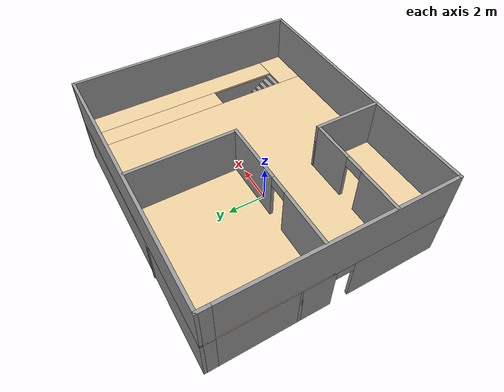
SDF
<?xml version='1.0'?>
<sdf version='1.7'>
  <model name='Map2'>
    <pose>0.282906 0.727471 0 0 -0 0</pose>
    <link name='Floor_0'>
      <pose>0 -0.023588 2.5 0 -0 0</pose>
      <visual name='Floor_0_Visual_0'>
        <pose>-1.1369 0 0.05 0 -0 0</pose>
        <geometry>
          <box>
            <size>11.2262 11.75 0.1</size>
          </box>
        </geometry>
        <material>
          <script>
            <uri>file://media/materials/scripts/gazebo.material</uri>
            <name>Gazebo/Grey</name>
          </script>
          <ambient>0.921569 0.807843 0.615686 1</ambient>
        </material>
        <meta>
          <layer>1</layer>
        </meta>
      </visual>
      <collision name='Floor_0_Collision_0'>
        <geometry>
          <box>
            <size>11.2262 11.75 0.1</size>
          </box>
        </geometry>
        <pose>-1.1369 0 0.05 0 -0 0</pose>
      </collision>
      <visual name='Floor_0_Visual_1'>
        <pose>5.6131 -5.1676 0.05 0 -0 0</pose>
        <geometry>
          <box>
            <size>2.27379 1.4148 0.1</size>
          </box>
        </geometry>
        <material>
          <script>
            <uri>file://media/materials/scripts/gazebo.material</uri>
            <name>Gazebo/Grey</name>
          </script>
          <ambient>0.921569 0.807843 0.615686 1</ambient>
        </material>
        <meta>
          <layer>1</layer>
        </meta>
      </visual>
      <collision name='Floor_0_Collision_1'>
        <geometry>
          <box>
            <size>2.27379 1.4148 0.1</size>
          </box>
        </geometry>
        <pose>5.6131 -5.1676 0.05 0 -0 0</pose>
      </collision>
      <visual name='Floor_0_Visual_2'>
        <pose>6.1131 0.707398 0.05 0 -0 0</pose>
        <geometry>
          <box>
            <size>1.27379 10.3352 0.1</size>
          </box>
        </geometry>
        <material>
          <script>
            <uri>file://media/materials/scripts/gazebo.material</uri>
            <name>Gazebo/Grey</name>
          </script>
          <ambient>0.921569 0.807843 0.615686 1</ambient>
        </material>
        <meta>
          <layer>1</layer>
        </meta>
      </visual>
      <collision name='Floor_0_Collision_2'>
        <geometry>
          <box>
            <size>1.27379 10.3352 0.1</size>
          </box>
        </geometry>
        <pose>6.1131 0.707398 0.05 0 -0 0</pose>
      </collision>
      <visual name='Floor_0_Visual_3'>
        <pose>4.97621 2.4574 0.05 0 -0 0</pose>
        <geometry>
          <box>
            <size>1 6.8352 0.1</size>
          </box>
        </geometry>
        <material>
          <script>
            <uri>file://media/materials/scripts/gazebo.material</uri>
            <name>Gazebo/Grey</name>
          </script>
          <ambient>0.921569 0.807843 0.615686 1</ambient>
        </material>
        <meta>
          <layer>1</layer>
        </meta>
      </visual>
      <collision name='Floor_0_Collision_3'>
        <geometry>
          <box>
            <size>1 6.8352 0.1</size>
          </box>
        </geometry>
        <pose>4.97621 2.4574 0.05 0 -0 0</pose>
      </collision>
    </link>
    <link name='Stairs_0'>
      <visual name='Stairs_0_Visual_0'>
        <pose>4.97621 -1.10046 0.083333 0 -0 0</pose>
        <geometry>
          <box>
            <size>1 0.233333 0.166667</size>
          </box>
        </geometry>
        <material>
          <script>
            <uri>file://media/materials/scripts/gazebo.material</uri>
            <name>Gazebo/Grey</name>
          </script>
          <ambient>1 1 1 1</ambient>
        </material>
        <meta>
          <layer>0</layer>
        </meta>
      </visual>
      <collision name='Stairs_0_Collision_0'>
        <geometry>
          <box>
            <size>1 0.233333 0.166667</size>
          </box>
        </geometry>
        <pose>4.97621 -1.10046 0.083333 0 -0 0</pose>
      </collision>
      <visual name='Stairs_0_Visual_1'>
        <pose>4.97621 -1.33379 0.25 0 -0 0</pose>
        <geometry>
          <box>
            <size>1 0.233333 0.166667</size>
          </box>
        </geometry>
        <material>
          <script>
            <uri>file://media/materials/scripts/gazebo.material</uri>
            <name>Gazebo/Grey</name>
          </script>
          <ambient>1 1 1 1</ambient>
        </material>
        <meta>
          <layer>0</layer>
        </meta>
      </visual>
      <collision name='Stairs_0_Collision_1'>
        <geometry>
          <box>
            <size>1 0.233333 0.166667</size>
          </box>
        </geometry>
        <pose>4.97621 -1.33379 0.25 0 -0 0</pose>
      </collision>
      <visual name='Stairs_0_Visual_2'>
        <pose>4.97621 -1.56713 0.416667 0 -0 0</pose>
        <geometry>
          <box>
            <size>1 0.233333 0.166667</size>
          </box>
        </geometry>
        <material>
          <script>
            <uri>file://media/materials/scripts/gazebo.material</uri>
            <name>Gazebo/Grey</name>
          </script>
          <ambient>1 1 1 1</ambient>
        </material>
        <meta>
          <layer>0</layer>
        </meta>
      </visual>
      <collision name='Stairs_0_Collision_2'>
        <geometry>
          <box>
            <size>1 0.233333 0.166667</size>
          </box>
        </geometry>
        <pose>4.97621 -1.56713 0.416667 0 -0 0</pose>
      </collision>
      <visual name='Stairs_0_Visual_3'>
        <pose>4.97621 -1.80046 0.583333 0 -0 0</pose>
        <geometry>
          <box>
            <size>1 0.233333 0.166667</size>
          </box>
        </geometry>
        <material>
          <script>
            <uri>file://media/materials/scripts/gazebo.material</uri>
            <name>Gazebo/Grey</name>
          </script>
          <ambient>1 1 1 1</ambient>
        </material>
        <meta>
          <layer>0</layer>
        </meta>
      </visual>
      <collision name='Stairs_0_Collision_3'>
        <geometry>
          <box>
            <size>1 0.233333 0.166667</size>
          </box>
        </geometry>
        <pose>4.97621 -1.80046 0.583333 0 -0 0</pose>
      </collision>
      <visual name='Stairs_0_Visual_4'>
        <pose>4.97621 -2.03379 0.75 0 -0 0</pose>
        <geometry>
          <box>
            <size>1 0.233333 0.166667</size>
          </box>
        </geometry>
        <material>
          <script>
            <uri>file://media/materials/scripts/gazebo.material</uri>
            <name>Gazebo/Grey</name>
          </script>
          <ambient>1 1 1 1</ambient>
        </material>
        <meta>
          <layer>0</layer>
        </meta>
      </visual>
      <collision name='Stairs_0_Collision_4'>
        <geometry>
          <box>
            <size>1 0.233333 0.166667</size>
          </box>
        </geometry>
        <pose>4.97621 -2.03379 0.75 0 -0 0</pose>
      </collision>
      <visual name='Stairs_0_Visual_5'>
        <pose>4.97621 -2.26713 0.916667 0 -0 0</pose>
        <geometry>
          <box>
            <size>1 0.233333 0.166667</size>
          </box>
        </geometry>
        <material>
          <script>
            <uri>file://media/materials/scripts/gazebo.material</uri>
            <name>Gazebo/Grey</name>
          </script>
          <ambient>1 1 1 1</ambient>
        </material>
        <meta>
          <layer>0</layer>
        </meta>
      </visual>
      <collision name='Stairs_0_Collision_5'>
        <geometry>
          <box>
            <size>1 0.233333 0.166667</size>
          </box>
        </geometry>
        <pose>4.97621 -2.26713 0.916667 0 -0 0</pose>
      </collision>
      <visual name='Stairs_0_Visual_6'>
        <pose>4.97621 -2.50046 1.08333 0 -0 0</pose>
        <geometry>
          <box>
            <size>1 0.233333 0.166667</size>
          </box>
        </geometry>
        <material>
          <script>
            <uri>file://media/materials/scripts/gazebo.material</uri>
            <name>Gazebo/Grey</name>
          </script>
          <ambient>1 1 1 1</ambient>
        </material>
        <meta>
          <layer>0</layer>
        </meta>
      </visual>
      <collision name='Stairs_0_Collision_6'>
        <geometry>
          <box>
            <size>1 0.233333 0.166667</size>
          </box>
        </geometry>
        <pose>4.97621 -2.50046 1.08333 0 -0 0</pose>
      </collision>
      <visual name='Stairs_0_Visual_7'>
        <pose>4.97621 -2.73379 1.25 0 -0 0</pose>
        <geometry>
          <box>
            <size>1 0.233333 0.166667</size>
          </box>
        </geometry>
        <material>
          <script>
            <uri>file://media/materials/scripts/gazebo.material</uri>
            <name>Gazebo/Grey</name>
          </script>
          <ambient>1 1 1 1</ambient>
        </material>
        <meta>
          <layer>0</layer>
        </meta>
      </visual>
      <collision name='Stairs_0_Collision_7'>
        <geometry>
          <box>
            <size>1 0.233333 0.166667</size>
          </box>
        </geometry>
        <pose>4.97621 -2.73379 1.25 0 -0 0</pose>
      </collision>
      <visual name='Stairs_0_Visual_8'>
        <pose>4.97621 -2.96712 1.41667 0 -0 0</pose>
        <geometry>
          <box>
            <size>1 0.233333 0.166667</size>
          </box>
        </geometry>
        <material>
          <script>
            <uri>file://media/materials/scripts/gazebo.material</uri>
            <name>Gazebo/Grey</name>
          </script>
          <ambient>1 1 1 1</ambient>
        </material>
        <meta>
          <layer>0</layer>
        </meta>
      </visual>
      <collision name='Stairs_0_Collision_8'>
        <geometry>
          <box>
            <size>1 0.233333 0.166667</size>
          </box>
        </geometry>
        <pose>4.97621 -2.96712 1.41667 0 -0 0</pose>
      </collision>
      <visual name='Stairs_0_Visual_9'>
        <pose>4.97621 -3.20046 1.58333 0 -0 0</pose>
        <geometry>
          <box>
            <size>1 0.233333 0.166667</size>
          </box>
        </geometry>
        <material>
          <script>
            <uri>file://media/materials/scripts/gazebo.material</uri>
            <name>Gazebo/Grey</name>
          </script>
          <ambient>1 1 1 1</ambient>
        </material>
        <meta>
          <layer>0</layer>
        </meta>
      </visual>
      <collision name='Stairs_0_Collision_9'>
        <geometry>
          <box>
            <size>1 0.233333 0.166667</size>
          </box>
        </geometry>
        <pose>4.97621 -3.20046 1.58333 0 -0 0</pose>
      </collision>
      <visual name='Stairs_0_Visual_10'>
        <pose>4.97621 -3.43379 1.75 0 -0 0</pose>
        <geometry>
          <box>
            <size>1 0.233333 0.166667</size>
          </box>
        </geometry>
        <material>
          <script>
            <uri>file://media/materials/scripts/gazebo.material</uri>
            <name>Gazebo/Grey</name>
          </script>
          <ambient>1 1 1 1</ambient>
        </material>
        <meta>
          <layer>0</layer>
        </meta>
      </visual>
      <collision name='Stairs_0_Collision_10'>
        <geometry>
          <box>
            <size>1 0.233333 0.166667</size>
          </box>
        </geometry>
        <pose>4.97621 -3.43379 1.75 0 -0 0</pose>
      </collision>
      <visual name='Stairs_0_Visual_11'>
        <pose>4.97621 -3.66712 1.91667 0 -0 0</pose>
        <geometry>
          <box>
            <size>1 0.233333 0.166667</size>
          </box>
        </geometry>
        <material>
          <script>
            <uri>file://media/materials/scripts/gazebo.material</uri>
            <name>Gazebo/Grey</name>
          </script>
          <ambient>1 1 1 1</ambient>
        </material>
        <meta>
          <layer>0</layer>
        </meta>
      </visual>
      <collision name='Stairs_0_Collision_11'>
        <geometry>
          <box>
            <size>1 0.233333 0.166667</size>
          </box>
        </geometry>
        <pose>4.97621 -3.66712 1.91667 0 -0 0</pose>
      </collision>
      <visual name='Stairs_0_Visual_12'>
        <pose>4.97621 -3.90046 2.08333 0 -0 0</pose>
        <geometry>
          <box>
            <size>1 0.233333 0.166667</size>
          </box>
        </geometry>
        <material>
          <script>
            <uri>file://media/materials/scripts/gazebo.material</uri>
            <name>Gazebo/Grey</name>
          </script>
          <ambient>1 1 1 1</ambient>
        </material>
        <meta>
          <layer>0</layer>
        </meta>
      </visual>
      <collision name='Stairs_0_Collision_12'>
        <geometry>
          <box>
            <size>1 0.233333 0.166667</size>
          </box>
        </geometry>
        <pose>4.97621 -3.90046 2.08333 0 -0 0</pose>
      </collision>
      <visual name='Stairs_0_Visual_13'>
        <pose>4.97621 -4.13379 2.25 0 -0 0</pose>
        <geometry>
          <box>
            <size>1 0.233333 0.166667</size>
          </box>
        </geometry>
        <material>
          <script>
            <uri>file://media/materials/scripts/gazebo.material</uri>
            <name>Gazebo/Grey</name>
          </script>
          <ambient>1 1 1 1</ambient>
        </material>
        <meta>
          <layer>0</layer>
        </meta>
      </visual>
      <collision name='Stairs_0_Collision_13'>
        <geometry>
          <box>
            <size>1 0.233333 0.166667</size>
          </box>
        </geometry>
        <pose>4.97621 -4.13379 2.25 0 -0 0</pose>
      </collision>
      <visual name='Stairs_0_Visual_14'>
        <pose>4.97621 -4.36712 2.41667 0 -0 0</pose>
        <geometry>
          <box>
            <size>1 0.233333 0.166667</size>
          </box>
        </geometry>
        <material>
          <script>
            <uri>file://media/materials/scripts/gazebo.material</uri>
            <name>Gazebo/Grey</name>
          </script>
          <ambient>1 1 1 1</ambient>
        </material>
        <meta>
          <layer>0</layer>
        </meta>
      </visual>
      <collision name='Stairs_0_Collision_14'>
        <geometry>
          <box>
            <size>1 0.233333 0.166667</size>
          </box>
        </geometry>
        <pose>4.97621 -4.36712 2.41667 0 -0 0</pose>
      </collision>
    </link>
    <link name='Wall_10'>
      <collision name='Wall_10_Collision'>
        <geometry>
          <box>
            <size>13.5 0.15 2.5</size>
          </box>
        </geometry>
        <pose>0 0 1.25 0 -0 0</pose>
      </collision>
      <visual name='Wall_10_Visual'>
        <pose>0 0 1.25 0 -0 0</pose>
        <geometry>
          <box>
            <size>13.5 0.15 2.5</size>
          </box>
        </geometry>
        <material>
          <script>
            <uri>file://media/materials/scripts/gazebo.material</uri>
            <name>Gazebo/Grey</name>
          </script>
          <ambient>1 1 1 1</ambient>
        </material>
        <meta>
          <layer>0</layer>
        </meta>
      </visual>
      <pose>0 5.77641 0 0 -0 3.14159</pose>
    </link>
    <link name='Wall_11'>
      <collision name='Wall_11_Collision'>
        <geometry>
          <box>
            <size>0.65 0.15 2.5</size>
          </box>
        </geometry>
        <pose>0 0 1.25 0 -0 0</pose>
      </collision>
      <visual name='Wall_11_Visual'>
        <pose>0 0 1.25 0 -0 0</pose>
        <geometry>
          <box>
            <size>0.65 0.15 2.5</size>
          </box>
        </geometry>
        <material>
          <script>
            <uri>file://media/materials/scripts/gazebo.material</uri>
            <name>Gazebo/Grey</name>
          </script>
          <ambient>1 1 1 1</ambient>
        </material>
        <meta>
          <layer>0</layer>
        </meta>
      </visual>
      <pose>-6.675 5.52641 0 0 -0 -1.5708</pose>
    </link>
    <link name='Wall_13'>
      <pose>-4.25 1.47359 0 0 -0 0</pose>
      <visual name='Wall_13_Visual_0'>
        <pose>-1.37269 0 1.25 0 -0 0</pose>
        <geometry>
          <box>
            <size>2.25461 0.15 2.5</size>
          </box>
        </geometry>
        <material>
          <script>
            <uri>file://media/materials/scripts/gazebo.material</uri>
            <name>Gazebo/Grey</name>
          </script>
          <ambient>1 1 1 1</ambient>
        </material>
        <meta>
          <layer>0</layer>
        </meta>
      </visual>
      <collision name='Wall_13_Collision_0'>
        <geometry>
          <box>
            <size>2.25461 0.15 2.5</size>
          </box>
        </geometry>
        <pose>-1.37269 0 1.25 0 -0 0</pose>
      </collision>
      <visual name='Wall_13_Visual_1'>
        <pose>1.57731 0 1.25 0 -0 0</pose>
        <geometry>
          <box>
            <size>1.84539 0.15 2.5</size>
          </box>
        </geometry>
        <material>
          <script>
            <uri>file://media/materials/scripts/gazebo.material</uri>
            <name>Gazebo/Grey</name>
          </script>
          <ambient>1 1 1 1</ambient>
        </material>
        <meta>
          <layer>0</layer>
        </meta>
      </visual>
      <collision name='Wall_13_Collision_1'>
        <geometry>
          <box>
            <size>1.84539 0.15 2.5</size>
          </box>
        </geometry>
        <pose>1.57731 0 1.25 0 -0 0</pose>
      </collision>
      <visual name='Wall_13_Visual_2'>
        <pose>0.204612 0 2.25 0 -0 0</pose>
        <geometry>
          <box>
            <size>0.9 0.15 0.5</size>
          </box>
        </geometry>
        <material>
          <script>
            <uri>file://media/materials/scripts/gazebo.material</uri>
            <name>Gazebo/Grey</name>
          </script>
          <ambient>1 1 1 1</ambient>
        </material>
        <meta>
          <layer>0</layer>
        </meta>
      </visual>
      <collision name='Wall_13_Collision_2'>
        <geometry>
          <box>
            <size>0.9 0.15 0.5</size>
          </box>
        </geometry>
        <pose>0.204612 0 2.25 0 -0 0</pose>
      </collision>
    </link>
    <link name='Wall_14'>
      <collision name='Wall_14_Collision'>
        <geometry>
          <box>
            <size>4.5 0.15 2.5</size>
          </box>
        </geometry>
        <pose>0 0 1.25 0 -0 0</pose>
      </collision>
      <visual name='Wall_14_Visual'>
        <pose>0 0 1.25 0 -0 0</pose>
        <geometry>
          <box>
            <size>4.5 0.15 2.5</size>
          </box>
        </geometry>
        <material>
          <script>
            <uri>file://media/materials/scripts/gazebo.material</uri>
            <name>Gazebo/Grey</name>
          </script>
          <ambient>1 1 1 1</ambient>
        </material>
        <meta>
          <layer>0</layer>
        </meta>
      </visual>
      <pose>-1.825 3.64859 0 0 -0 1.5708</pose>
    </link>
    <link name='Wall_18'>
      <pose>2.35 1.47359 0 0 -0 0</pose>
      <visual name='Wall_18_Visual_0'>
        <pose>-3.16081 0 1.25 0 -0 0</pose>
        <geometry>
          <box>
            <size>2.17837 0.15 2.5</size>
          </box>
        </geometry>
        <material>
          <script>
            <uri>file://media/materials/scripts/gazebo.material</uri>
            <name>Gazebo/Grey</name>
          </script>
          <ambient>1 1 1 1</ambient>
        </material>
        <meta>
          <layer>0</layer>
        </meta>
      </visual>
      <collision name='Wall_18_Collision_0'>
        <geometry>
          <box>
            <size>2.17837 0.15 2.5</size>
          </box>
        </geometry>
        <pose>-3.16081 0 1.25 0 -0 0</pose>
      </collision>
      <visual name='Wall_18_Visual_1'>
        <pose>0.279783 0 1.25 0 -0 0</pose>
        <geometry>
          <box>
            <size>2.90282 0.15 2.5</size>
          </box>
        </geometry>
        <material>
          <script>
            <uri>file://media/materials/scripts/gazebo.material</uri>
            <name>Gazebo/Grey</name>
          </script>
          <ambient>1 1 1 1</ambient>
        </material>
        <meta>
          <layer>0</layer>
        </meta>
      </visual>
      <collision name='Wall_18_Collision_1'>
        <geometry>
          <box>
            <size>2.90282 0.15 2.5</size>
          </box>
        </geometry>
        <pose>0.279783 0 1.25 0 -0 0</pose>
      </collision>
      <visual name='Wall_18_Visual_2'>
        <pose>3.4406 0 1.25 0 -0 0</pose>
        <geometry>
          <box>
            <size>1.61881 0.15 2.5</size>
          </box>
        </geometry>
        <material>
          <script>
            <uri>file://media/materials/scripts/gazebo.material</uri>
            <name>Gazebo/Grey</name>
          </script>
          <ambient>1 1 1 1</ambient>
        </material>
        <meta>
          <layer>0</layer>
        </meta>
      </visual>
      <collision name='Wall_18_Collision_2'>
        <geometry>
          <box>
            <size>1.61881 0.15 2.5</size>
          </box>
        </geometry>
        <pose>3.4406 0 1.25 0 -0 0</pose>
      </collision>
      <visual name='Wall_18_Visual_3'>
        <pose>-1.62163 0 2.25 0 -0 0</pose>
        <geometry>
          <box>
            <size>0.9 0.15 0.5</size>
          </box>
        </geometry>
        <material>
          <script>
            <uri>file://media/materials/scripts/gazebo.material</uri>
            <name>Gazebo/Grey</name>
          </script>
          <ambient>1 1 1 1</ambient>
        </material>
        <meta>
          <layer>0</layer>
        </meta>
      </visual>
      <collision name='Wall_18_Collision_3'>
        <geometry>
          <box>
            <size>0.9 0.15 0.5</size>
          </box>
        </geometry>
        <pose>-1.62163 0 2.25 0 -0 0</pose>
      </collision>
      <visual name='Wall_18_Visual_4'>
        <pose>2.1812 0 2.25 0 -0 0</pose>
        <geometry>
          <box>
            <size>0.9 0.15 0.5</size>
          </box>
        </geometry>
        <material>
          <script>
            <uri>file://media/materials/scripts/gazebo.material</uri>
            <name>Gazebo/Grey</name>
          </script>
          <ambient>1 1 1 1</ambient>
        </material>
        <meta>
          <layer>0</layer>
        </meta>
      </visual>
      <collision name='Wall_18_Collision_4'>
        <geometry>
          <box>
            <size>0.9 0.15 0.5</size>
          </box>
        </geometry>
        <pose>2.1812 0 2.25 0 -0 0</pose>
      </collision>
    </link>
    <link name='Wall_20'>
      <collision name='Wall_20_Collision'>
        <geometry>
          <box>
            <size>4.25 0.15 2.5</size>
          </box>
        </geometry>
        <pose>0 0 1.25 0 -0 0</pose>
      </collision>
      <visual name='Wall_20_Visual'>
        <pose>0 0 1.25 0 -0 0</pose>
        <geometry>
          <box>
            <size>4.25 0.15 2.5</size>
          </box>
        </geometry>
        <material>
          <script>
            <uri>file://media/materials/scripts/gazebo.material</uri>
            <name>Gazebo/Grey</name>
          </script>
          <ambient>1 1 1 1</ambient>
        </material>
        <meta>
          <layer>0</layer>
        </meta>
      </visual>
      <pose>2.46796 3.52359 0 0 -0 1.5708</pose>
    </link>
    <link name='Wall_23'>
      <collision name='Wall_23_Collision'>
        <geometry>
          <box>
            <size>5.25 0.15 2.5</size>
          </box>
        </geometry>
        <pose>0 0 1.25 0 -0 0</pose>
      </collision>
      <visual name='Wall_23_Visual'>
        <pose>0 0 1.25 0 -0 0</pose>
        <geometry>
          <box>
            <size>5.25 0.15 2.5</size>
          </box>
        </geometry>
        <material>
          <script>
            <uri>file://media/materials/scripts/gazebo.material</uri>
            <name>Gazebo/Grey</name>
          </script>
          <ambient>1 1 1 1</ambient>
        </material>
        <meta>
          <layer>0</layer>
        </meta>
      </visual>
      <pose>-4.08454 -2.61242 0 0 -0 0</pose>
    </link>
    <link name='Wall_24'>
      <pose>-1.53454 -4.16242 0 0 -0 -1.5708</pose>
      <visual name='Wall_24_Visual_0'>
        <pose>-1.12475 0 1.25 0 -0 0</pose>
        <geometry>
          <box>
            <size>1.00049 0.15 2.5</size>
          </box>
        </geometry>
        <material>
          <script>
            <uri>file://media/materials/scripts/gazebo.material</uri>
            <name>Gazebo/Grey</name>
          </script>
          <ambient>1 1 1 1</ambient>
        </material>
        <meta>
          <layer>0</layer>
        </meta>
      </visual>
      <collision name='Wall_24_Collision_0'>
        <geometry>
          <box>
            <size>1.00049 0.15 2.5</size>
          </box>
        </geometry>
        <pose>-1.12475 0 1.25 0 -0 0</pose>
      </collision>
      <visual name='Wall_24_Visual_1'>
        <pose>0.950245 0 1.25 0 -0 0</pose>
        <geometry>
          <box>
            <size>1.34951 0.15 2.5</size>
          </box>
        </geometry>
        <material>
          <script>
            <uri>file://media/materials/scripts/gazebo.material</uri>
            <name>Gazebo/Grey</name>
          </script>
          <ambient>1 1 1 1</ambient>
        </material>
        <meta>
          <layer>0</layer>
        </meta>
      </visual>
      <collision name='Wall_24_Collision_1'>
        <geometry>
          <box>
            <size>1.34951 0.15 2.5</size>
          </box>
        </geometry>
        <pose>0.950245 0 1.25 0 -0 0</pose>
      </collision>
      <visual name='Wall_24_Visual_2'>
        <pose>-0.17451 0 2.25 0 -0 0</pose>
        <geometry>
          <box>
            <size>0.9 0.15 0.5</size>
          </box>
        </geometry>
        <material>
          <script>
            <uri>file://media/materials/scripts/gazebo.material</uri>
            <name>Gazebo/Grey</name>
          </script>
          <ambient>1 1 1 1</ambient>
        </material>
        <meta>
          <layer>0</layer>
        </meta>
      </visual>
      <collision name='Wall_24_Collision_2'>
        <geometry>
          <box>
            <size>0.9 0.15 0.5</size>
          </box>
        </geometry>
        <pose>-0.17451 0 2.25 0 -0 0</pose>
      </collision>
    </link>
    <link name='Wall_26'>
      <collision name='Wall_26_Collision'>
        <geometry>
          <box>
            <size>11.25 0.15 2.5</size>
          </box>
        </geometry>
        <pose>0 0 1.25 0 -0 0</pose>
      </collision>
      <visual name='Wall_26_Visual'>
        <pose>0 0 1.25 0 -0 0</pose>
        <geometry>
          <box>
            <size>11.25 0.15 2.5</size>
          </box>
        </geometry>
        <material>
          <script>
            <uri>file://media/materials/scripts/gazebo.material</uri>
            <name>Gazebo/Grey</name>
          </script>
          <ambient>1 1 1 1</ambient>
        </material>
        <meta>
          <layer>1</layer>
        </meta>
      </visual>
      <pose>-6.675 -0.273588 2.5 0 -0 -1.5708</pose>
    </link>
    <link name='Wall_27'>
      <collision name='Wall_27_Collision'>
        <geometry>
          <box>
            <size>13.5 0.15 2.5</size>
          </box>
        </geometry>
        <pose>0 0 1.25 0 -0 0</pose>
      </collision>
      <visual name='Wall_27_Visual'>
        <pose>0 0 1.25 0 -0 0</pose>
        <geometry>
          <box>
            <size>13.5 0.15 2.5</size>
          </box>
        </geometry>
        <material>
          <script>
            <uri>file://media/materials/scripts/gazebo.material</uri>
            <name>Gazebo/Grey</name>
          </script>
          <ambient>1 1 1 1</ambient>
        </material>
        <meta>
          <layer>1</layer>
        </meta>
      </visual>
      <pose>0 -5.82359 2.5 0 -0 0</pose>
    </link>
    <link name='Wall_28'>
      <collision name='Wall_28_Collision'>
        <geometry>
          <box>
            <size>11.75 0.15 2.5</size>
          </box>
        </geometry>
        <pose>0 0 1.25 0 -0 0</pose>
      </collision>
      <visual name='Wall_28_Visual'>
        <pose>0 0 1.25 0 -0 0</pose>
        <geometry>
          <box>
            <size>11.75 0.15 2.5</size>
          </box>
        </geometry>
        <material>
          <script>
            <uri>file://media/materials/scripts/gazebo.material</uri>
            <name>Gazebo/Grey</name>
          </script>
          <ambient>1 1 1 1</ambient>
        </material>
        <meta>
          <layer>1</layer>
        </meta>
      </visual>
      <pose>6.675 -0.023588 2.5 0 -0 1.5708</pose>
    </link>
    <link name='Wall_29'>
      <collision name='Wall_29_Collision'>
        <geometry>
          <box>
            <size>13.5 0.15 2.5</size>
          </box>
        </geometry>
        <pose>0 0 1.25 0 -0 0</pose>
      </collision>
      <visual name='Wall_29_Visual'>
        <pose>0 0 1.25 0 -0 0</pose>
        <geometry>
          <box>
            <size>13.5 0.15 2.5</size>
          </box>
        </geometry>
        <material>
          <script>
            <uri>file://media/materials/scripts/gazebo.material</uri>
            <name>Gazebo/Grey</name>
          </script>
          <ambient>1 1 1 1</ambient>
        </material>
        <meta>
          <layer>1</layer>
        </meta>
      </visual>
      <pose>0 5.77641 2.5 0 -0 3.14159</pose>
    </link>
    <link name='Wall_30'>
      <collision name='Wall_30_Collision'>
        <geometry>
          <box>
            <size>0.65 0.15 2.5</size>
          </box>
        </geometry>
        <pose>0 0 1.25 0 -0 0</pose>
      </collision>
      <visual name='Wall_30_Visual'>
        <pose>0 0 1.25 0 -0 0</pose>
        <geometry>
          <box>
            <size>0.65 0.15 2.5</size>
          </box>
        </geometry>
        <material>
          <script>
            <uri>file://media/materials/scripts/gazebo.material</uri>
            <name>Gazebo/Grey</name>
          </script>
          <ambient>1 1 1 1</ambient>
        </material>
        <meta>
          <layer>1</layer>
        </meta>
      </visual>
      <pose>-6.675 5.52641 2.5 0 -0 -1.5708</pose>
    </link>
    <link name='Wall_35'>
      <pose>-4.08454 -2.61242 2.5 0 -0 0</pose>
      <visual name='Wall_35_Visual_0'>
        <pose>-1.53815 0 1.25 0 -0 0</pose>
        <geometry>
          <box>
            <size>2.1737 0.15 2.5</size>
          </box>
        </geometry>
        <material>
          <script>
            <uri>file://media/materials/scripts/gazebo.material</uri>
            <name>Gazebo/Grey</name>
          </script>
          <ambient>1 1 1 1</ambient>
        </material>
        <meta>
          <layer>1</layer>
        </meta>
      </visual>
      <collision name='Wall_35_Collision_0'>
        <geometry>
          <box>
            <size>2.1737 0.15 2.5</size>
          </box>
        </geometry>
        <pose>-1.53815 0 1.25 0 -0 0</pose>
      </collision>
      <visual name='Wall_35_Visual_1'>
        <pose>1.53685 0 1.25 0 -0 0</pose>
        <geometry>
          <box>
            <size>2.1763 0.15 2.5</size>
          </box>
        </geometry>
        <material>
          <script>
            <uri>file://media/materials/scripts/gazebo.material</uri>
            <name>Gazebo/Grey</name>
          </script>
          <ambient>1 1 1 1</ambient>
        </material>
        <meta>
          <layer>1</layer>
        </meta>
      </visual>
      <collision name='Wall_35_Collision_1'>
        <geometry>
          <box>
            <size>2.1763 0.15 2.5</size>
          </box>
        </geometry>
        <pose>1.53685 0 1.25 0 -0 0</pose>
      </collision>
      <visual name='Wall_35_Visual_2'>
        <pose>-0.001299 0 2.25 0 -0 0</pose>
        <geometry>
          <box>
            <size>0.9 0.15 0.5</size>
          </box>
        </geometry>
        <material>
          <script>
            <uri>file://media/materials/scripts/gazebo.material</uri>
            <name>Gazebo/Grey</name>
          </script>
          <ambient>1 1 1 1</ambient>
        </material>
        <meta>
          <layer>1</layer>
        </meta>
      </visual>
      <collision name='Wall_35_Collision_2'>
        <geometry>
          <box>
            <size>0.9 0.15 0.5</size>
          </box>
        </geometry>
        <pose>-0.001299 0 2.25 0 -0 0</pose>
      </collision>
    </link>
    <link name='Wall_36'>
      <collision name='Wall_36_Collision'>
        <geometry>
          <box>
            <size>3.25 0.15 2.5</size>
          </box>
        </geometry>
        <pose>0 0 1.25 0 -0 0</pose>
      </collision>
      <visual name='Wall_36_Visual'>
        <pose>0 0 1.25 0 -0 0</pose>
        <geometry>
          <box>
            <size>3.25 0.15 2.5</size>
          </box>
        </geometry>
        <material>
          <script>
            <uri>file://media/materials/scripts/gazebo.material</uri>
            <name>Gazebo/Grey</name>
          </script>
          <ambient>1 1 1 1</ambient>
        </material>
        <meta>
          <layer>1</layer>
        </meta>
      </visual>
      <pose>-1.53454 -4.16242 2.5 0 -0 -1.5708</pose>
    </link>
    <link name='Wall_37'>
      <collision name='Wall_37_Collision'>
        <geometry>
          <box>
            <size>5.25 0.15 2.5</size>
          </box>
        </geometry>
        <pose>0 0 1.25 0 -0 0</pose>
      </collision>
      <visual name='Wall_37_Visual'>
        <pose>0 0 1.25 0 -0 0</pose>
        <geometry>
          <box>
            <size>5.25 0.15 2.5</size>
          </box>
        </geometry>
        <material>
          <script>
            <uri>file://media/materials/scripts/gazebo.material</uri>
            <name>Gazebo/Grey</name>
          </script>
          <ambient>1 1 1 1</ambient>
        </material>
        <meta>
          <layer>1</layer>
        </meta>
      </visual>
      <pose>0.040626 3.17142 2.5 0 -0 -1.5708</pose>
    </link>
    <link name='Wall_38'>
      <pose>-3.25937 0.621424 2.5 0 -0 3.14159</pose>
      <visual name='Wall_38_Visual_0'>
        <pose>-1.80268 0 1.25 0 -0 0</pose>
        <geometry>
          <box>
            <size>3.14464 0.15 2.5</size>
          </box>
        </geometry>
        <material>
          <script>
            <uri>file://media/materials/scripts/gazebo.material</uri>
            <name>Gazebo/Grey</name>
          </script>
          <ambient>1 1 1 1</ambient>
        </material>
        <meta>
          <layer>1</layer>
        </meta>
      </visual>
      <collision name='Wall_38_Collision_0'>
        <geometry>
          <box>
            <size>3.14464 0.15 2.5</size>
          </box>
        </geometry>
        <pose>-1.80268 0 1.25 0 -0 0</pose>
      </collision>
      <visual name='Wall_38_Visual_1'>
        <pose>2.02232 0 1.25 0 -0 0</pose>
        <geometry>
          <box>
            <size>2.70537 0.15 2.5</size>
          </box>
        </geometry>
        <material>
          <script>
            <uri>file://media/materials/scripts/gazebo.material</uri>
            <name>Gazebo/Grey</name>
          </script>
          <ambient>1 1 1 1</ambient>
        </material>
        <meta>
          <layer>1</layer>
        </meta>
      </visual>
      <collision name='Wall_38_Collision_1'>
        <geometry>
          <box>
            <size>2.70537 0.15 2.5</size>
          </box>
        </geometry>
        <pose>2.02232 0 1.25 0 -0 0</pose>
      </collision>
      <visual name='Wall_38_Visual_2'>
        <pose>0.219635 0 2.25 0 -0 0</pose>
        <geometry>
          <box>
            <size>0.9 0.15 0.5</size>
          </box>
        </geometry>
        <material>
          <script>
            <uri>file://media/materials/scripts/gazebo.material</uri>
            <name>Gazebo/Grey</name>
          </script>
          <ambient>1 1 1 1</ambient>
        </material>
        <meta>
          <layer>1</layer>
        </meta>
      </visual>
      <collision name='Wall_38_Collision_2'>
        <geometry>
          <box>
            <size>0.9 0.15 0.5</size>
          </box>
        </geometry>
        <pose>0.219635 0 2.25 0 -0 0</pose>
      </collision>
    </link>
    <link name='Wall_7'>
      <pose>-6.675 -0.273588 0 0 -0 -1.5708</pose>
      <visual name='Wall_7_Visual_0'>
        <pose>-2.87947 0 1.25 0 -0 0</pose>
        <geometry>
          <box>
            <size>5.49106 0.15 2.5</size>
          </box>
        </geometry>
        <material>
          <script>
            <uri>file://media/materials/scripts/gazebo.material</uri>
            <name>Gazebo/Grey</name>
          </script>
          <ambient>1 1 1 1</ambient>
        </material>
        <meta>
          <layer>0</layer>
        </meta>
      </visual>
      <collision name='Wall_7_Collision_0'>
        <geometry>
          <box>
            <size>5.49106 0.15 2.5</size>
          </box>
        </geometry>
        <pose>-2.87947 0 1.25 0 -0 0</pose>
      </collision>
      <visual name='Wall_7_Visual_1'>
        <pose>3.19553 0 1.25 0 -0 0</pose>
        <geometry>
          <box>
            <size>4.85894 0.15 2.5</size>
          </box>
        </geometry>
        <material>
          <script>
            <uri>file://media/materials/scripts/gazebo.material</uri>
            <name>Gazebo/Grey</name>
          </script>
          <ambient>1 1 1 1</ambient>
        </material>
        <meta>
          <layer>0</layer>
        </meta>
      </visual>
      <collision name='Wall_7_Collision_1'>
        <geometry>
          <box>
            <size>4.85894 0.15 2.5</size>
          </box>
        </geometry>
        <pose>3.19553 0 1.25 0 -0 0</pose>
      </collision>
      <visual name='Wall_7_Visual_2'>
        <pose>0.316059 0 2.25 0 -0 0</pose>
        <geometry>
          <box>
            <size>0.9 0.15 0.5</size>
          </box>
        </geometry>
        <material>
          <script>
            <uri>file://media/materials/scripts/gazebo.material</uri>
            <name>Gazebo/Grey</name>
          </script>
          <ambient>1 1 1 1</ambient>
        </material>
        <meta>
          <layer>0</layer>
        </meta>
      </visual>
      <collision name='Wall_7_Collision_2'>
        <geometry>
          <box>
            <size>0.9 0.15 0.5</size>
          </box>
        </geometry>
        <pose>0.316059 0 2.25 0 -0 0</pose>
      </collision>
    </link>
    <link name='Wall_8'>
      <collision name='Wall_8_Collision'>
        <geometry>
          <box>
            <size>13.5 0.15 2.5</size>
          </box>
        </geometry>
        <pose>0 0 1.25 0 -0 0</pose>
      </collision>
      <visual name='Wall_8_Visual'>
        <pose>0 0 1.25 0 -0 0</pose>
        <geometry>
          <box>
            <size>13.5 0.15 2.5</size>
          </box>
        </geometry>
        <material>
          <script>
            <uri>file://media/materials/scripts/gazebo.material</uri>
            <name>Gazebo/Grey</name>
          </script>
          <ambient>1 1 1 1</ambient>
        </material>
        <meta>
          <layer>0</layer>
        </meta>
      </visual>
      <pose>0 -5.82359 0 0 -0 0</pose>
    </link>
    <link name='Wall_9'>
      <collision name='Wall_9_Collision'>
        <geometry>
          <box>
            <size>11.75 0.15 2.5</size>
          </box>
        </geometry>
        <pose>0 0 1.25 0 -0 0</pose>
      </collision>
      <visual name='Wall_9_Visual'>
        <pose>0 0 1.25 0 -0 0</pose>
        <geometry>
          <box>
            <size>11.75 0.15 2.5</size>
          </box>
        </geometry>
        <material>
          <script>
            <uri>file://media/materials/scripts/gazebo.material</uri>
            <name>Gazebo/Grey</name>
          </script>
          <ambient>1 1 1 1</ambient>
        </material>
        <meta>
          <layer>0</layer>
        </meta>
      </visual>
      <pose>6.675 -0.023588 0 0 -0 1.5708</pose>
    </link>
    <static>1</static>
  </model>
</sdf>
